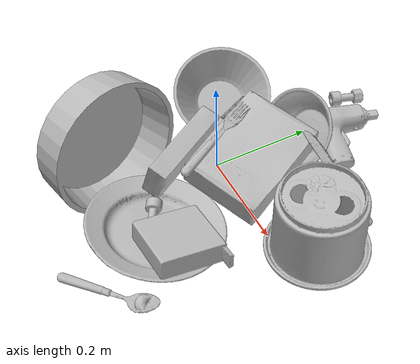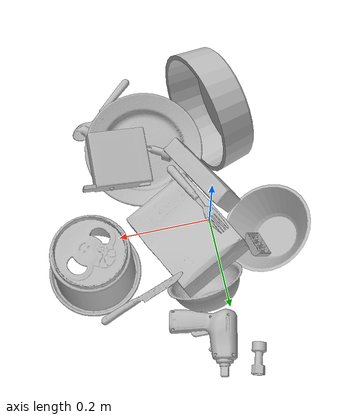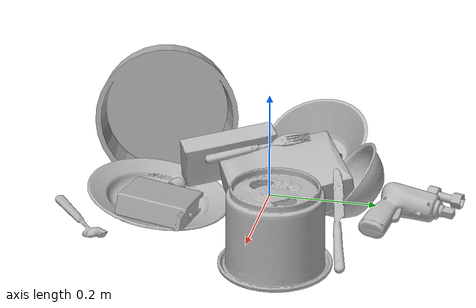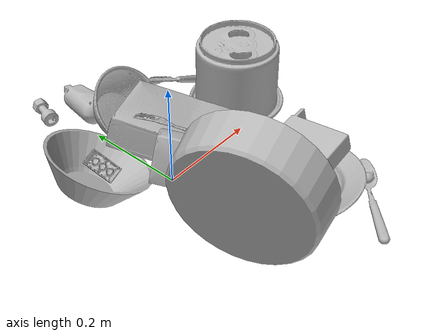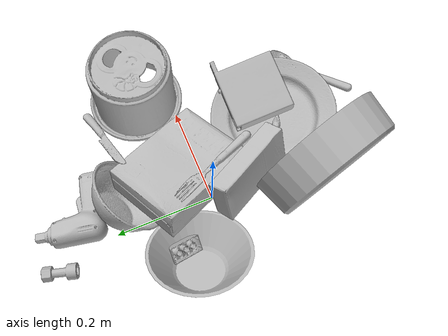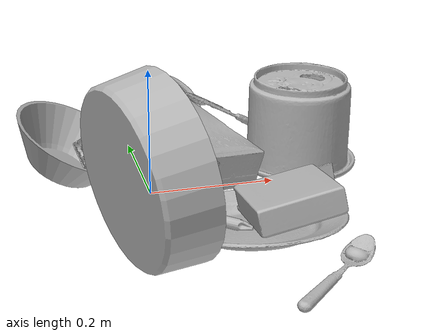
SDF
<sdf version="1.4">
  <world name="default">
    <light name="light1" type="point">
      <pose>0 0 1 0 0 0</pose>
      <diffuse>3 3 3 1</diffuse>
      <specular>3 3 3 1</specular>
    </light>
    <light name="light2" type="point">
      <pose>0 0.5 2 0 0 0</pose>
      <diffuse>1 1 1 1</diffuse>
      <specular>1 1 1 1</specular>
    </light>
    <light name="light3" type="point">
      <pose>0 0.5 2 0 0 0</pose>
      <diffuse>3 3 3 1</diffuse>
      <specular>3 3 3 1</specular>
    </light>
    <scene>
      <ambient>0.7 0.7 0.7</ambient>
    </scene>
    <model name="plate1">
      <link name="link_plate1">
        <collision name="default">
          <geometry>
            <mesh>
              <uri>model://plate/collision_meshes/collision.obj</uri>
              <scale>1.0 1.0 1.0</scale>
            </mesh>
          </geometry>
          <surface>
            <friction>
              <ode>
                <mu>0.5</mu>
                <mu2>0.5</mu2>
              </ode>
            </friction>
          <contact>
        <ode>
            <max_vel>0</max_vel>
            <min_depth>0.0001</min_depth>
            <kp>1e8</kp>
        </ode>
    </contact></surface>
        </collision>
        <visual name="default">
          <geometry>
            <mesh>
              <uri>model://plate/visual_meshes/visual.dae</uri>
              <scale>1.0 1.0 1.0</scale>
            </mesh>
          </geometry>
        </visual>
        <inertial>
          <mass>0.11001742631196976</mass>
          <pose>-0.0006044686888344586 0.000278257648460567 -0.0010561998933553696 0.00221878912528286 -0.0032254756485070152 0.4526088917028743</pose>
          <inertia>
            <ixx>0.00051466376</ixx>
            <iyy>0.0005097412</iyy>
            <izz>0.0010066056</izz>
            <ixy>0</ixy>
            <ixz>0</ixz>
            <iyz>0</iyz>
          </inertia>
        </inertial>
      </link>
      <pose>0.10919565707445145 -0.18318650126457214 0.027250124141573906 -0.048506085775458355 0.17288710415609385 1.2820823601762468</pose>
    </model>
    <model name="plate2">
      <link name="link_plate2">
        <collision name="default">
          <geometry>
            <mesh>
              <uri>model://pan_tefal/collision_meshes/collision.obj</uri>
              <scale>1.0 1.0 1.0</scale>
            </mesh>
          </geometry>
          <surface>
            <friction>
              <ode>
                <mu>0.5</mu>
                <mu2>0.5</mu2>
              </ode>
            </friction>
          <contact>
        <ode>
            <max_vel>0</max_vel>
            <min_depth>0.0001</min_depth>
            <kp>1e8</kp>
        </ode>
    </contact></surface>
        </collision>
        <visual name="default">
          <geometry>
            <mesh>
              <uri>model://pan_tefal/visual_meshes/visual.dae</uri>
              <scale>1.0 1.0 1.0</scale>
            </mesh>
          </geometry>
        </visual>
        <inertial>
          <mass>1.457576870918274</mass>
          <pose>-0.00018002426077146083 3.279360316810198e-05 -0.008514936082065105 0.0008190306735146073 -0.00033013365411173643 -0.33185917339097665</pose>
          <inertia>
            <ixx>0.010061583</ixx>
            <iyy>0.01012645</iyy>
            <izz>0.01852144</izz>
            <ixy>0</ixy>
            <ixz>0</ixz>
            <iyz>0</iyz>
          </inertia>
        </inertial>
      </link>
      <pose>-0.0442025363445282 -0.2059181183576584 0.1284414827823639 1.4619983061503836 0.20982392344534637 1.8195624436194597</pose>
    </model>
    <model name="bowl1">
      <link name="link_bowl1">
        <collision name="default">
          <geometry>
            <mesh>
              <uri>model://bowl_a/collision_meshes/collision.obj</uri>
              <scale>1.0 1.0 1.0</scale>
            </mesh>
          </geometry>
          <surface>
            <friction>
              <ode>
                <mu>0.5</mu>
                <mu2>0.5</mu2>
              </ode>
            </friction>
          <contact>
        <ode>
            <max_vel>0</max_vel>
            <min_depth>0.0001</min_depth>
            <kp>1e8</kp>
        </ode>
    </contact></surface>
        </collision>
        <visual name="default">
          <geometry>
            <mesh>
              <uri>model://bowl_a/visual_meshes/visual.dae</uri>
              <scale>1.0 1.0 1.0</scale>
            </mesh>
          </geometry>
        </visual>
        <inertial>
          <mass>0.29746556282043457</mass>
          <pose>0.0002786756958812475 4.7311452362919226e-05 -0.0013765294570475817 -0.0009805438325310402 -0.001093816410149737 -0.19123071729823712</pose>
          <inertia>
            <ixx>0.0008468981</ixx>
            <iyy>0.00085209764</iyy>
            <izz>0.0015062407</izz>
            <ixy>0</ixy>
            <ixz>0</ixz>
            <iyz>0</iyz>
          </inertia>
        </inertial>
      </link>
      <pose>-0.11765553802251816 0.07331063598394394 0.05252423882484436 0.05299848434801399 0.47215645567193376 -0.21983878365449336</pose>
    </model>
    <model name="bowl2">
      <link name="link_bowl2">
        <collision name="default">
          <geometry>
            <mesh>
              <uri>model://bowl/collision_meshes/collision.obj</uri>
              <scale>1.0 1.0 1.0</scale>
            </mesh>
          </geometry>
          <surface>
            <friction>
              <ode>
                <mu>0.5</mu>
                <mu2>0.5</mu2>
              </ode>
            </friction>
          <contact>
        <ode>
            <max_vel>0</max_vel>
            <min_depth>0.0001</min_depth>
            <kp>1e8</kp>
        </ode>
    </contact></surface>
        </collision>
        <visual name="default">
          <geometry>
            <mesh>
              <uri>model://bowl/visual_meshes/visual.dae</uri>
              <scale>1.0 1.0 1.0</scale>
            </mesh>
          </geometry>
        </visual>
        <inertial>
          <mass>0.12348172068595886</mass>
          <pose>0.0002044529828708619 -0.0010302055161446333 -0.0008042656118050218 -0.01576411854188812 0.014546757923928972 0.7140383762832406</pose>
          <inertia>
            <ixx>0.0002836472</ixx>
            <iyy>0.00027730947</iyy>
            <izz>0.00047719217</izz>
            <ixy>0</ixy>
            <ixz>0</ixz>
            <iyz>0</iyz>
          </inertia>
        </inertial>
      </link>
      <pose>0.04239797592163086 0.16863682866096497 0.05426739528775215 -0.5835408099256417 -0.702605625107978 2.566961749665361</pose>
    </model>
    <model name="silverware1">
      <link name="link_silverware1">
        <collision name="default">
          <geometry>
            <mesh>
              <uri>model://spoon/collision_meshes/collision.obj</uri>
              <scale>1.0 1.0 1.0</scale>
            </mesh>
          </geometry>
          <surface>
            <friction>
              <ode>
                <mu>0.5</mu>
                <mu2>0.5</mu2>
              </ode>
            </friction>
          <contact>
        <ode>
            <max_vel>0</max_vel>
            <min_depth>0.0001</min_depth>
            <kp>1e8</kp>
        </ode>
    </contact></surface>
        </collision>
        <visual name="default">
          <geometry>
            <mesh>
              <uri>model://spoon/visual_meshes/visual.dae</uri>
              <scale>1.0 1.0 1.0</scale>
            </mesh>
          </geometry>
        </visual>
        <inertial>
          <mass>0.03284037858247757</mass>
          <pose>-0.005526319611817598 -0.001603417214937508 -0.000727165665011853 0.03521671059584429 -0.039065856285187314 0.0061506144474233635</pose>
          <inertia>
            <ixx>1.8266356e-06</ixx>
            <iyy>0.00012495652</iyy>
            <izz>0.00012585736</izz>
            <ixy>0</ixy>
            <ixz>0</ixz>
            <iyz>0</iyz>
          </inertia>
        </inertial>
      </link>
      <pose>0.18139119446277618 -0.30671975016593933 0.00838526152074337 0.006729434857068233 0.026893001882408656 0.7288311231461854</pose>
    </model>
    <model name="box1">
      <link name="link_box1">
        <collision name="default">
          <geometry>
            <mesh>
              <uri>model://cracker_box/collision_meshes/collision.obj</uri>
              <scale>1.0 1.0 1.0</scale>
            </mesh>
          </geometry>
          <surface>
            <friction>
              <ode>
                <mu>0.5</mu>
                <mu2>0.5</mu2>
              </ode>
            </friction>
          <contact>
        <ode>
            <max_vel>0</max_vel>
            <min_depth>0.0001</min_depth>
            <kp>1e8</kp>
        </ode>
    </contact></surface>
        </collision>
        <visual name="default">
          <geometry>
            <mesh>
              <uri>model://cracker_box/visual_meshes/visual.dae</uri>
              <scale>1.0 1.0 1.0</scale>
            </mesh>
          </geometry>
        </visual>
        <inertial>
          <mass>2.434305191040039</mass>
          <pose>0.0009464126778766513 0.0002543424488976598 -0.0017029534792527556 -0.0003162073658586955 -0.011106488669321329 0.0025467952332158075</pose>
          <inertia>
            <ixx>0.0061917845</ixx>
            <iyy>0.010223853</iyy>
            <izz>0.014590379</izz>
            <ixy>0</ixy>
            <ixz>0</ixz>
            <iyz>0</iyz>
          </inertia>
        </inertial>
      </link>
      <pose>0.0602724626660347 0.0427345372736454 0.06424923986196518 0.1693769969099995 -0.16566798750339856 2.0014075678631276</pose>
    </model>
    <model name="box2">
      <link name="link_box2">
        <collision name="default">
          <geometry>
            <mesh>
              <uri>model://sugar_box/collision_meshes/collision.obj</uri>
              <scale>1.0 1.0 1.0</scale>
            </mesh>
          </geometry>
          <surface>
            <friction>
              <ode>
                <mu>0.5</mu>
                <mu2>0.5</mu2>
              </ode>
            </friction>
          <contact>
        <ode>
            <max_vel>0</max_vel>
            <min_depth>0.0001</min_depth>
            <kp>1e8</kp>
        </ode>
    </contact></surface>
        </collision>
        <visual name="default">
          <geometry>
            <mesh>
              <uri>model://sugar_box/visual_meshes/visual.dae</uri>
              <scale>1.0 1.0 1.0</scale>
            </mesh>
          </geometry>
        </visual>
        <inertial>
          <mass>0.5700510144233704</mass>
          <pose>0.0010343727190047503 3.849109634757042e-05 -0.00036364805418998003 -0.00040462615490547663 0.0010506634056045778 0.0026153790218534064</pose>
          <inertia>
            <ixx>0.00047496508</ixx>
            <iyy>0.0015351841</iyy>
            <izz>0.0018377992</izz>
            <ixy>0</ixy>
            <ixz>0</ixz>
            <iyz>0</iyz>
          </inertia>
        </inertial>
      </link>
      <pose>0.0015260518994182348 -0.07645740360021591 0.07722807675600052 1.913731482765011 -0.10005111386126536 2.063512753257223</pose>
    </model>
    <model name="cup1">
      <link name="link_cup1">
        <collision name="default">
          <geometry>
            <mesh>
              <uri>model://i_cups/collision_meshes/collision.obj</uri>
              <scale>2.0 2.0 2.0</scale>
            </mesh>
          </geometry>
          <surface>
            <friction>
              <ode>
                <mu>0.5</mu>
                <mu2>0.5</mu2>
              </ode>
            </friction>
          <contact>
        <ode>
            <max_vel>0</max_vel>
            <min_depth>0.0001</min_depth>
            <kp>1e8</kp>
        </ode>
    </contact></surface>
        </collision>
        <visual name="default">
          <geometry>
            <mesh>
              <uri>model://i_cups/visual_meshes/visual.dae</uri>
              <scale>2.0 2.0 2.0</scale>
            </mesh>
          </geometry>
        </visual>
        <inertial>
          <mass>0.8749163746833801</mass>
          <pose>0.0002248019736725837 0.0003359491820447147 -0.0017158064292743802 -0.028982988446176382 -0.03987323668700188 -0.3459135059395342</pose>
          <inertia>
            <ixx>0.0048453393</ixx>
            <iyy>0.0048880302</iyy>
            <izz>0.0054154512</izz>
            <ixy>0</ixy>
            <ixz>0</ixz>
            <iyz>0</iyz>
          </inertia>
        </inertial>
      </link>
      <pose>0.2655826210975647 0.06568264216184616 0.07586605846881866 3.141592399444323 1.437351876159449e-07 1.0421848917505003</pose>
    </model>
    <model name="silverware2">
      <link name="link_silverware2">
        <collision name="default">
          <geometry>
            <mesh>
              <uri>model://fork/collision_meshes/collision.obj</uri>
              <scale>1.0 1.0 1.0</scale>
            </mesh>
          </geometry>
          <surface>
            <friction>
              <ode>
                <mu>0.5</mu>
                <mu2>0.5</mu2>
              </ode>
            </friction>
          <contact>
        <ode>
            <max_vel>0</max_vel>
            <min_depth>0.0001</min_depth>
            <kp>1e8</kp>
        </ode>
    </contact></surface>
        </collision>
        <visual name="default">
          <geometry>
            <mesh>
              <uri>model://fork/visual_meshes/visual.dae</uri>
              <scale>1.0 1.0 1.0</scale>
            </mesh>
          </geometry>
        </visual>
        <inertial>
          <mass>0.021080315113067627</mass>
          <pose>-0.02957003377377987 0.00046588227269239724 0.0003218860656488687 -0.013550583544297463 -0.010977830979267335 0.014453899239778455</pose>
          <inertia>
            <ixx>7.3898417e-07</ixx>
            <iyy>5.503463e-05</iyy>
            <izz>5.5365177e-05</izz>
            <ixy>0</ixy>
            <ixz>0</ixz>
            <iyz>0</iyz>
          </inertia>
        </inertial>
      </link>
      <pose>0.02799046039581299 -0.016584016382694244 0.10897468030452728 -2.7766966921213068 -0.1798816477440451 1.990068888335314</pose>
    </model>
    <model name="silverware3">
      <link name="link_silverware3">
        <collision name="default">
          <geometry>
            <mesh>
              <uri>model://knife/collision_meshes/collision.obj</uri>
              <scale>1.0 1.0 1.0</scale>
            </mesh>
          </geometry>
          <surface>
            <friction>
              <ode>
                <mu>0.5</mu>
                <mu2>0.5</mu2>
              </ode>
            </friction>
          <contact>
        <ode>
            <max_vel>0</max_vel>
            <min_depth>0.0001</min_depth>
            <kp>1e8</kp>
        </ode>
    </contact></surface>
        </collision>
        <visual name="default">
          <geometry>
            <mesh>
              <uri>model://knife/visual_meshes/visual.dae</uri>
              <scale>1.0 1.0 1.0</scale>
            </mesh>
          </geometry>
        </visual>
        <inertial>
          <mass>0.03557601198554039</mass>
          <pose>-0.023785259574651718 0.0015275123296305537 5.062016498413868e-05 0.07305791577183936 0.01724842049726123 -0.007409813921982597</pose>
          <inertia>
            <ixx>1.0097915e-06</ixx>
            <iyy>0.00013667726</iyy>
            <izz>0.00013700248</izz>
            <ixy>0</ixy>
            <ixz>0</ixz>
            <iyz>0</iyz>
          </inertia>
        </inertial>
      </link>
      <pose>0.18083876371383667 0.1600870043039322 0.05736701563000679 -0.24049204547185288 -0.5283447095019452 -2.9340372245686335</pose>
    </model>
    <model name="toy1">
      <link name="link_toy1">
        <collision name="default">
          <geometry>
            <mesh>
              <uri>model://b_toy_airplane/collision_meshes/collision.obj</uri>
              <scale>1.0 1.0 1.0</scale>
            </mesh>
          </geometry>
          <surface>
            <friction>
              <ode>
                <mu>0.5</mu>
                <mu2>0.5</mu2>
              </ode>
            </friction>
          <contact>
        <ode>
            <max_vel>0</max_vel>
            <min_depth>0.0001</min_depth>
            <kp>1e8</kp>
        </ode>
    </contact></surface>
        </collision>
        <visual name="default">
          <geometry>
            <mesh>
              <uri>model://b_toy_airplane/visual_meshes/visual.dae</uri>
              <scale>1.0 1.0 1.0</scale>
            </mesh>
          </geometry>
        </visual>
        <inertial>
          <mass>0.2131570726633072</mass>
          <pose>0.005081363953649998 0.00401558680459857 0.00954306498169899 -0.040018114912876775 -0.04022188568687408 -0.5601502887595425</pose>
          <inertia>
            <ixx>0.00039573</ixx>
            <iyy>0.00015817716</iyy>
            <izz>0.00049232744</izz>
            <ixy>0</ixy>
            <ixz>0</ixz>
            <iyz>0</iyz>
          </inertia>
        </inertial>
      </link>
      <pose>0.05158546566963196 0.24584423005580902 0.01697787269949913 0.1848765260030335 0.11349930954691781 1.3544339282699283</pose>
    </model>
    <model name="toy2">
      <link name="link_toy2">
        <collision name="default">
          <geometry>
            <mesh>
              <uri>model://nine_hole_peg_test/collision_meshes/collision.obj</uri>
              <scale>1.0 1.0 1.0</scale>
            </mesh>
          </geometry>
          <surface>
            <friction>
              <ode>
                <mu>0.5</mu>
                <mu2>0.5</mu2>
              </ode>
            </friction>
          <contact>
        <ode>
            <max_vel>0</max_vel>
            <min_depth>0.0001</min_depth>
            <kp>1e8</kp>
        </ode>
    </contact></surface>
        </collision>
        <visual name="default">
          <geometry>
            <mesh>
              <uri>model://nine_hole_peg_test/visual_meshes/visual.dae</uri>
              <scale>1.0 1.0 1.0</scale>
            </mesh>
          </geometry>
        </visual>
        <inertial>
          <mass>0.9403080940246582</mass>
          <pose>-0.004617387894541025 -0.009647617116570473 2.646069333422929e-05 -0.0014666798116952742 0.0007194174694617774 -0.6342424398534297</pose>
          <inertia>
            <ixx>0.0014703267</ixx>
            <iyy>0.0013728285</iyy>
            <izz>0.0025764457</izz>
            <ixy>0</ixy>
            <ixz>0</ixz>
            <iyz>0</iyz>
          </inertia>
        </inertial>
      </link>
      <pose>0.17786753177642822 -0.15859167277812958 0.0489395409822464 2.9515158570849005 0.14273058483491394 1.5386517629800909</pose>
    </model>
    <model name="toy3">
      <link name="link_toy3">
        <collision name="default">
          <geometry>
            <mesh>
              <uri>model://a_lego_duplo/collision_meshes/collision.obj</uri>
              <scale>1.0 1.0 1.0</scale>
            </mesh>
          </geometry>
          <surface>
            <friction>
              <ode>
                <mu>0.5</mu>
                <mu2>0.5</mu2>
              </ode>
            </friction>
          <contact>
        <ode>
            <max_vel>0</max_vel>
            <min_depth>0.0001</min_depth>
            <kp>1e8</kp>
        </ode>
    </contact></surface>
        </collision>
        <visual name="default">
          <geometry>
            <mesh>
              <uri>model://a_lego_duplo/visual_meshes/visual.dae</uri>
              <scale>1.0 1.0 1.0</scale>
            </mesh>
          </geometry>
        </visual>
        <inertial>
          <mass>0.023130550980567932</mass>
          <pose>-0.00011337705655023456 0.00018517566786613315 0.00036926098982803524 -0.014116995996849858 -0.00012565876120078728 6.143831699070756e-05</pose>
          <inertia>
            <ixx>2.9655212e-06</ixx>
            <iyy>6.643419e-06</iyy>
            <izz>8.229349e-06</izz>
            <ixy>0</ixy>
            <ixz>0</ixz>
            <iyz>0</iyz>
          </inertia>
        </inertial>
      </link>
      <pose>-0.0814649909734726 0.09242524951696396 0.03449935466051102 -2.5863334075211113 0.3868445212392314 -1.3776780533807043</pose>
    </model>
    <model name="toy4">
      <link name="link_toy4">
        <collision name="default">
          <geometry>
            <mesh>
              <uri>model://c_toy_airplane/collision_meshes/collision.obj</uri>
              <scale>1.0 1.0 1.0</scale>
            </mesh>
          </geometry>
          <surface>
            <friction>
              <ode>
                <mu>0.5</mu>
                <mu2>0.5</mu2>
              </ode>
            </friction>
          <contact>
        <ode>
            <max_vel>0</max_vel>
            <min_depth>0.0001</min_depth>
            <kp>1e8</kp>
        </ode>
    </contact></surface>
        </collision>
        <visual name="default">
          <geometry>
            <mesh>
              <uri>model://c_toy_airplane/visual_meshes/visual.dae</uri>
              <scale>1.0 1.0 1.0</scale>
            </mesh>
          </geometry>
        </visual>
        <inertial>
          <mass>0.016945533454418182</mass>
          <pose>-0.00023024251277092844 -4.426267139479023e-07 -0.006080526392906904 -0.00619248279943298 -0.01679780513617648 0.7654772671109313</pose>
          <inertia>
            <ixx>7.781044e-06</ixx>
            <iyy>7.759084e-06</iyy>
            <izz>1.826835e-06</izz>
            <ixy>0</ixy>
            <ixz>0</ixz>
            <iyz>0</iyz>
          </inertia>
        </inertial>
      </link>
      <pose>-0.030128834769129753 0.322889506816864 0.015013587661087513 -1.6157343394537482 -0.9170300619658999 -0.25479011930778805</pose>
    </model>
    <model name="toy5">
      <link name="link_toy5">
        <collision name="default">
          <geometry>
            <mesh>
              <uri>model://d_toy_airplane/collision_meshes/collision.obj</uri>
              <scale>1.0 1.0 1.0</scale>
            </mesh>
          </geometry>
          <surface>
            <friction>
              <ode>
                <mu>0.5</mu>
                <mu2>0.5</mu2>
              </ode>
            </friction>
          <contact>
        <ode>
            <max_vel>0</max_vel>
            <min_depth>0.0001</min_depth>
            <kp>1e8</kp>
        </ode>
    </contact></surface>
        </collision>
        <visual name="default">
          <geometry>
            <mesh>
              <uri>model://d_toy_airplane/visual_meshes/visual.dae</uri>
              <scale>1.0 1.0 1.0</scale>
            </mesh>
          </geometry>
        </visual>
        <inertial>
          <mass>0.01782749593257904</mass>
          <pose>9.410309576196596e-05 -5.809334834339097e-05 -0.011728094890713692 0.00026697885790152897 0.00467897817044427 0.5194648744438854</pose>
          <inertia>
            <ixx>5.3443378e-06</ixx>
            <iyy>5.3483677e-06</iyy>
            <izz>1.6134899e-06</izz>
            <ixy>0</ixy>
            <ixz>0</ixz>
            <iyz>0</iyz>
          </inertia>
        </inertial>
      </link>
      <pose>0.07830196619033813 -0.1747288554906845 0.027030877768993378 -1.7872374904077293 1.163234499847575 -2.336771159397853</pose>
    </model>
  <physics type="ode">
      <max_contacts>50</max_contacts>
      <ode>
        <solver>
          <type>quick</type>
          <iters>75</iters>
        </solver>
        <constraints>
          <contact_max_correcting_vel>0</contact_max_correcting_vel>
          <contact_surface_layer>0</contact_surface_layer>
        </constraints>
      </ode>
    </physics></world>
</sdf>
